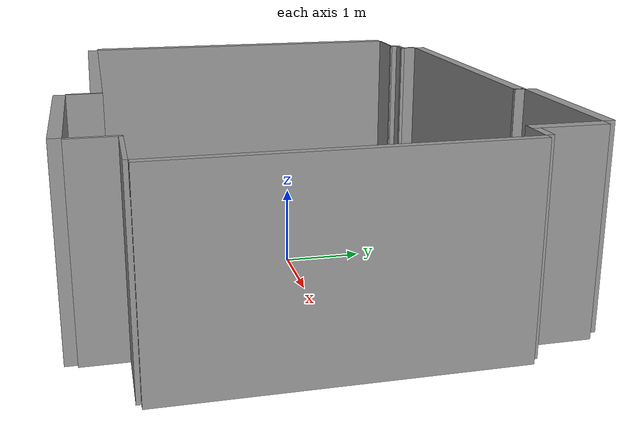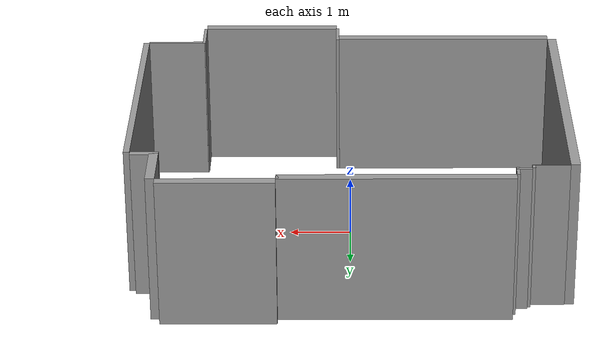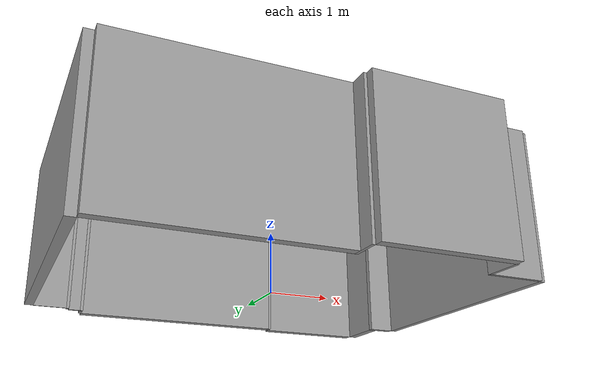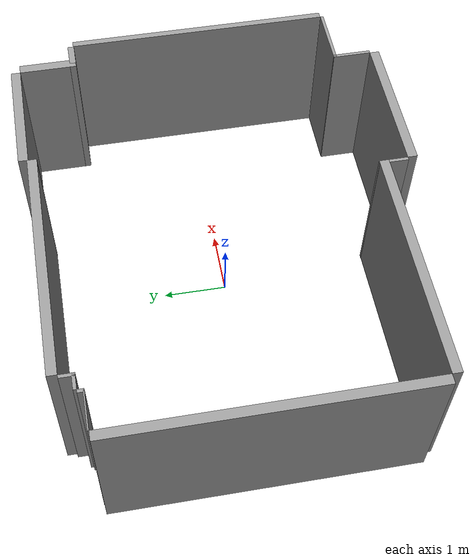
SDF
<?xml version='1.0'?>
<sdf version='1.7'>
  <model name='pic4ser_walls'>
    <pose>0 0 0 0 -0 0</pose>
    <link name='Wall_12'>
      <collision name='Wall_12_Collision'>
        <geometry>
          <box>
            <size>4.15 0.1 2.5</size>
          </box>
        </geometry>
        <pose>0 0 1.25 0 -0 0</pose>
      </collision>
      <visual name='Wall_12_Visual'>
        <pose>0 0 1.25 0 -0 0</pose>
        <geometry>
          <box>
            <size>4.15 0.1 2.5</size>
          </box>
        </geometry>
        <material>
          <script>
            <uri>file://media/materials/scripts/gazebo.material</uri>
            <name>Gazebo/Grey</name>
          </script>
          <ambient>1 1 1 1</ambient>
        </material>
        <meta>
          <layer>0</layer>
        </meta>
      </visual>
      <pose>3.504186 -0.141611 0 0 -0 -1.5708</pose>
    </link>
    <link name='Wall_15'>
      <collision name='Wall_15_Collision'>
        <geometry>
          <box>
            <size>0.45 0.1 2.5</size>
          </box>
        </geometry>
        <pose>0 0 1.25 0 -0 0</pose>
      </collision>
      <visual name='Wall_15_Visual'>
        <pose>0 0 1.25 0 -0 0</pose>
        <geometry>
          <box>
            <size>0.45 0.1 2.5</size>
          </box>
        </geometry>
        <material>
          <script>
            <uri>file://media/materials/scripts/gazebo.material</uri>
            <name>Gazebo/Grey</name>
          </script>
          <ambient>1 1 1 1</ambient>
        </material>
        <meta>
          <layer>0</layer>
        </meta>
      </visual>
      <pose>3.222406 1.972784 0 0 -0 3.14159</pose>
    </link>
    <link name='Wall_17'>
      <collision name='Wall_17_Collision'>
        <geometry>
          <box>
            <size>0.9 0.15 2.5</size>
          </box>
        </geometry>
        <pose>0 0 1.25 0 -0 0</pose>
      </collision>
      <visual name='Wall_17_Visual'>
        <pose>0 0 1.25 0 -0 0</pose>
        <geometry>
          <box>
            <size>0.9 0.15 2.5</size>
          </box>
        </geometry>
        <material>
          <script>
            <uri>file://media/materials/scripts/gazebo.material</uri>
            <name>Gazebo/Grey</name>
          </script>
          <ambient>1 1 1 1</ambient>
        </material>
        <meta>
          <layer>0</layer>
        </meta>
      </visual>
      <pose>3.073276 2.375059 0 0 -0 -1.5708</pose>
    </link>
    <link name='Wall_19'>
      <collision name='Wall_19_Collision'>
        <geometry>
          <box>
            <size>1.85 0.15 2.5</size>
          </box>
        </geometry>
        <pose>0 0 1.25 0 -0 0</pose>
      </collision>
      <visual name='Wall_19_Visual'>
        <pose>0 0 1.25 0 -0 0</pose>
        <geometry>
          <box>
            <size>1.85 0.15 2.5</size>
          </box>
        </geometry>
        <material>
          <script>
            <uri>file://media/materials/scripts/gazebo.material</uri>
            <name>Gazebo/Grey</name>
          </script>
          <ambient>1 1 1 1</ambient>
        </material>
        <meta>
          <layer>0</layer>
        </meta>
      </visual>
      <pose>2.075396 2.897429 0 0 -0 3.14159</pose>
    </link>
    <link name='Wall_21'>
      <collision name='Wall_21_Collision'>
        <geometry>
          <box>
            <size>0.13 0.05 2.5</size>
          </box>
        </geometry>
        <pose>0 0 1.25 0 -0 0</pose>
      </collision>
      <visual name='Wall_21_Visual'>
        <pose>0 0 1.25 0 -0 0</pose>
        <geometry>
          <box>
            <size>0.13 0.05 2.5</size>
          </box>
        </geometry>
        <material>
          <script>
            <uri>file://media/materials/scripts/gazebo.material</uri>
            <name>Gazebo/Grey</name>
          </script>
          <ambient>1 1 1 1</ambient>
        </material>
        <meta>
          <layer>0</layer>
        </meta>
      </visual>
      <pose>1.124116 2.756609 0 0 -0 -1.5708</pose>
    </link>
    <link name='Wall_24'>
      <collision name='Wall_24_Collision'>
        <geometry>
          <box>
            <size>3.7 0.15 2.5</size>
          </box>
        </geometry>
        <pose>0 0 1.25 0 -0 0</pose>
      </collision>
      <visual name='Wall_24_Visual'>
        <pose>0 0 1.25 0 -0 0</pose>
        <geometry>
          <box>
            <size>3.7 0.15 2.5</size>
          </box>
        </geometry>
        <material>
          <script>
            <uri>file://media/materials/scripts/gazebo.material</uri>
            <name>Gazebo/Grey</name>
          </script>
          <ambient>1 1 1 1</ambient>
        </material>
        <meta>
          <layer>0</layer>
        </meta>
      </visual>
      <pose>-0.699771 2.767399 0 0 -0 3.14159</pose>
    </link>
    <link name='Wall_28'>
      <collision name='Wall_28_Collision'>
        <geometry>
          <box>
            <size>0.25 0.05 2.5</size>
          </box>
        </geometry>
        <pose>0 0 1.25 0 -0 0</pose>
      </collision>
      <visual name='Wall_28_Visual'>
        <pose>0 0 1.25 0 -0 0</pose>
        <geometry>
          <box>
            <size>0.25 0.05 2.5</size>
          </box>
        </geometry>
        <material>
          <script>
            <uri>file://media/materials/scripts/gazebo.material</uri>
            <name>Gazebo/Grey</name>
          </script>
          <ambient>1 1 1 1</ambient>
        </material>
        <meta>
          <layer>0</layer>
        </meta>
      </visual>
      <pose>-2.676834 2.488479 0 0 -0 3.14159</pose>
    </link>
    <link name='Wall_34'>
      <collision name='Wall_34_Collision'>
        <geometry>
          <box>
            <size>0.1 0.05 2.5</size>
          </box>
        </geometry>
        <pose>0 0 1.25 0 -0 0</pose>
      </collision>
      <visual name='Wall_34_Visual'>
        <pose>0 0 1.25 0 -0 0</pose>
        <geometry>
          <box>
            <size>0.1 0.05 2.5</size>
          </box>
        </geometry>
        <material>
          <script>
            <uri>file://media/materials/scripts/gazebo.material</uri>
            <name>Gazebo/Grey</name>
          </script>
          <ambient>1 1 1 1</ambient>
        </material>
        <meta>
          <layer>0</layer>
        </meta>
      </visual>
      <pose>-2.828294 2.416186 0 0 -0 -1.5708</pose>
    </link>
    <link name='Wall_39'>
      <collision name='Wall_39_Collision'>
        <geometry>
          <box>
            <size>0.6 0.02 2.5</size>
          </box>
        </geometry>
        <pose>0 0 1.25 0 -0 0</pose>
      </collision>
      <visual name='Wall_39_Visual'>
        <pose>0 0 1.25 0 -0 0</pose>
        <geometry>
          <box>
            <size>0.6 0.02 2.5</size>
          </box>
        </geometry>
        <material>
          <script>
            <uri>file://media/materials/scripts/gazebo.material</uri>
            <name>Gazebo/Grey</name>
          </script>
          <ambient>1 1 1 1</ambient>
        </material>
        <meta>
          <layer>0</layer>
        </meta>
      </visual>
      <pose>-3.102684 2.376896 0 0 -0 3.14159</pose>
    </link>
    <link name='Wall_41'>
      <collision name='Wall_41_Collision'>
        <geometry>
          <box>
            <size>0.23 0.05 2.5</size>
          </box>
        </geometry>
        <pose>0 0 1.25 0 -0 0</pose>
      </collision>
      <visual name='Wall_41_Visual'>
        <pose>0 0 1.25 0 -0 0</pose>
        <geometry>
          <box>
            <size>0.23 0.05 2.5</size>
          </box>
        </geometry>
        <material>
          <script>
            <uri>file://media/materials/scripts/gazebo.material</uri>
            <name>Gazebo/Grey</name>
          </script>
          <ambient>1 1 1 1</ambient>
        </material>
        <meta>
          <layer>0</layer>
        </meta>
      </visual>
      <pose>-2.577674 2.576212 0 0 -0 -1.5708</pose>
    </link>
    <link name='Wall_43'>
      <collision name='Wall_43_Collision'>
        <geometry>
          <box>
            <size>4.74 0.15 2.5</size>
          </box>
        </geometry>
        <pose>0 0 1.25 0 -0 0</pose>
      </collision>
      <visual name='Wall_43_Visual'>
        <pose>0 0 1.25 0 -0 0</pose>
        <geometry>
          <box>
            <size>4.74 0.15 2.5</size>
          </box>
        </geometry>
        <material>
          <script>
            <uri>file://media/materials/scripts/gazebo.material</uri>
            <name>Gazebo/Grey</name>
          </script>
          <ambient>1 1 1 1</ambient>
        </material>
        <meta>
          <layer>0</layer>
        </meta>
      </visual>
      <pose>-3.479184 -0.003711 0 0 -0 1.5708</pose>
    </link>
    <link name='Wall_45'>
      <collision name='Wall_45_Collision'>
        <geometry>
          <box>
            <size>3.65 0.15 2.5</size>
          </box>
        </geometry>
        <pose>0 0 1.25 0 -0 0</pose>
      </collision>
      <visual name='Wall_45_Visual'>
        <pose>0 0 1.25 0 -0 0</pose>
        <geometry>
          <box>
            <size>3.65 0.15 2.5</size>
          </box>
        </geometry>
        <material>
          <script>
            <uri>file://media/materials/scripts/gazebo.material</uri>
            <name>Gazebo/Grey</name>
          </script>
          <ambient>1 1 1 1</ambient>
        </material>
        <meta>
          <layer>0</layer>
        </meta>
      </visual>
      <pose>-1.582841 -2.451461 0 0 -0 3.14159</pose>
    </link>
    <link name='Wall_47'>
      <collision name='Wall_47_Collision'>
        <geometry>
          <box>
            <size>0.45 0.05 2.5</size>
          </box>
        </geometry>
        <pose>0 0 1.25 0 -0 0</pose>
      </collision>
      <visual name='Wall_47_Visual'>
        <pose>0 0 1.25 0 -0 0</pose>
        <geometry>
          <box>
            <size>0.45 0.05 2.5</size>
          </box>
        </geometry>
        <material>
          <script>
            <uri>file://media/materials/scripts/gazebo.material</uri>
            <name>Gazebo/Grey</name>
          </script>
          <ambient>1 1 1 1</ambient>
        </material>
        <meta>
          <layer>0</layer>
        </meta>
      </visual>
      <pose>0.217206 -2.599001 0 0 -0 -1.5708</pose>
    </link>
    <link name='Wall_49'>
      <collision name='Wall_49_Collision'>
        <geometry>
          <box>
            <size>2.25 0.15 2.5</size>
          </box>
        </geometry>
        <pose>0 0 1.25 0 -0 0</pose>
      </collision>
      <visual name='Wall_49_Visual'>
        <pose>0 0 1.25 0 -0 0</pose>
        <geometry>
          <box>
            <size>2.25 0.15 2.5</size>
          </box>
        </geometry>
        <material>
          <script>
            <uri>file://media/materials/scripts/gazebo.material</uri>
            <name>Gazebo/Grey</name>
          </script>
          <ambient>1 1 1 1</ambient>
        </material>
        <meta>
          <layer>0</layer>
        </meta>
      </visual>
      <pose>1.366386 -2.897431 0 0 -0 0</pose>
    </link>
    <link name='Wall_51'>
      <collision name='Wall_51_Collision'>
        <geometry>
          <box>
            <size>0.6 0.05 2.5</size>
          </box>
        </geometry>
        <pose>0 0 1.25 0 -0 0</pose>
      </collision>
      <visual name='Wall_51_Visual'>
        <pose>0 0 1.25 0 -0 0</pose>
        <geometry>
          <box>
            <size>0.6 0.05 2.5</size>
          </box>
        </geometry>
        <material>
          <script>
            <uri>file://media/materials/scripts/gazebo.material</uri>
            <name>Gazebo/Grey</name>
          </script>
          <ambient>1 1 1 1</ambient>
        </material>
        <meta>
          <layer>0</layer>
        </meta>
      </visual>
      <pose>2.515216 -2.526221 0 0 -0 -1.5708</pose>
    </link>
    <link name='Wall_53'>
      <collision name='Wall_53_Collision'>
        <geometry>
          <box>
            <size>0.95 0.05 2.5</size>
          </box>
        </geometry>
        <pose>0 0 1.25 0 -0 0</pose>
      </collision>
      <visual name='Wall_53_Visual'>
        <pose>0 0 1.25 0 -0 0</pose>
        <geometry>
          <box>
            <size>0.95 0.05 2.5</size>
          </box>
        </geometry>
        <material>
          <script>
            <uri>file://media/materials/scripts/gazebo.material</uri>
            <name>Gazebo/Grey</name>
          </script>
          <ambient>1 1 1 1</ambient>
        </material>
        <meta>
          <layer>0</layer>
        </meta>
      </visual>
      <pose>2.982956 -2.247051 0 0 -0 0</pose>
    </link>
    <static>1</static>
  </model>
</sdf>
